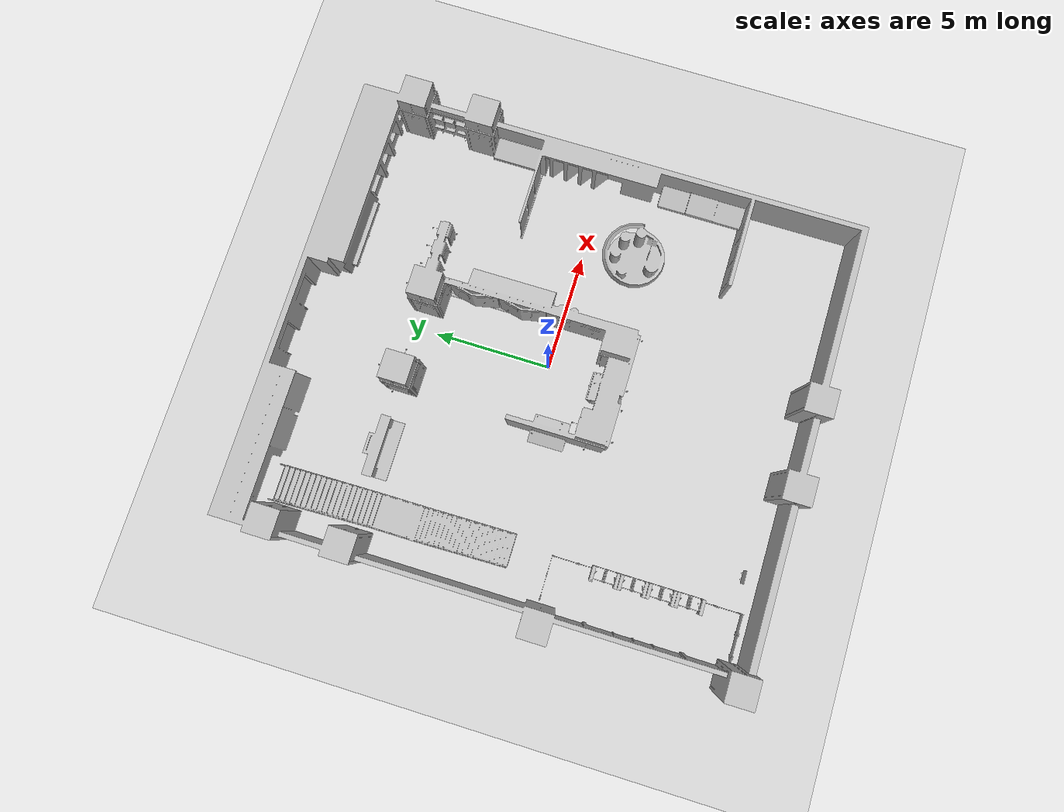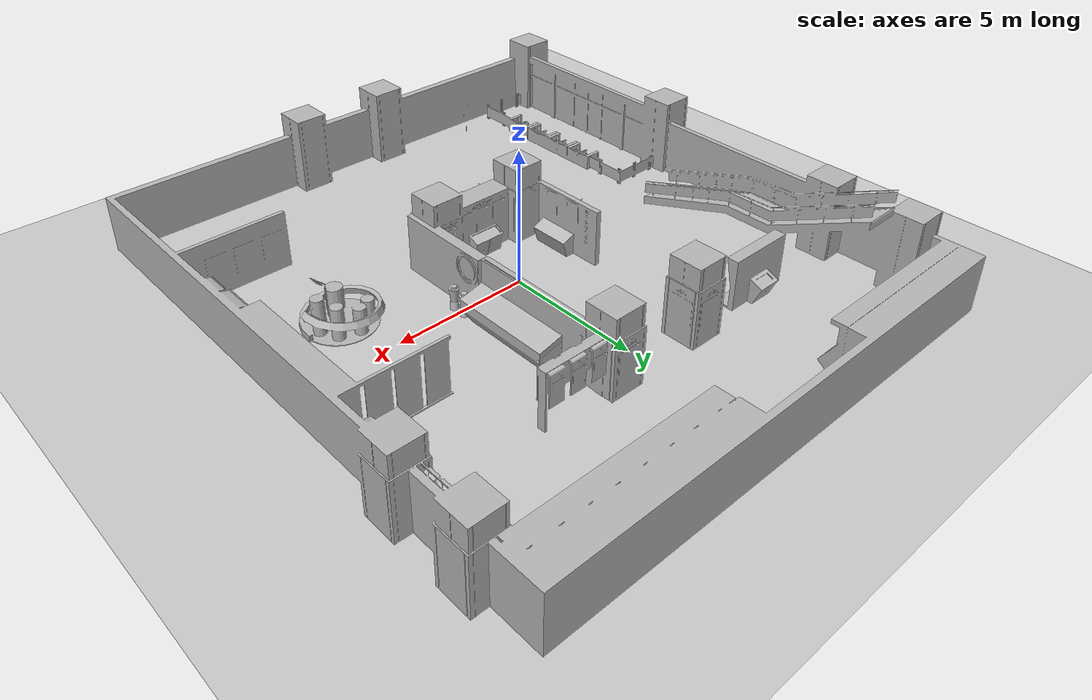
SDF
<?xml version="1.0" ?>
<sdf version="1.4">
 <world name="default">
    <scene>
      <ambient>0.68 0.68 0.68 1.0</ambient>
      <shadows> false</shadows>
      <sky>
        <sunrise/>
        <clouds>
          <speed>12</speed>
      </clouds>
      </sky>
    </scene>

    <physics type='ode'>
      <max_step_size>0.001</max_step_size>
      <real_time_factor>1</real_time_factor>
      <real_time_update_rate>1000</real_time_update_rate>
      <gravity>0 0 -9.8</gravity>
    </physics>

    <include>
      <uri>model://sun</uri>
    </include>

    <include>
      <uri>model://ISCAS_groundplane</uri>
    </include>

    <include>
      <uri>model://ISCAS_Museum</uri>
      <pose>0 0 0 0 0 -1.57</pose>
    </include>

  </world>
</sdf>

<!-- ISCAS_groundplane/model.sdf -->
<sdf version="1.4">
  <model name="ISCAS_groundplane">
    <static>true</static>
    <link name="link">
      <collision name="collision">
        <geometry>
          <plane>
            <normal>0 0 1</normal>
            <size>30 30</size>
          </plane>
        </geometry>
        <surface>
          <friction>
            <ode>
              <mu>100</mu>
              <mu2>50</mu2>
            </ode>
          </friction>
        </surface>
      </collision>
      <visual name="visual">
        <cast_shadows>false</cast_shadows>
        <geometry>
          <plane>
            <normal>0 0 1</normal>
            <size>30 30</size>
          </plane>
        </geometry>
        <material>
          <script>
            <uri>model://ISCAS_groundplane/materials/scripts</uri>
            <uri>model://ISCAS_groundplane/materials/textures</uri>
            <name>ISCAS_groundplane/Image </name>
          </script>
        </material>
      </visual>
    </link>
  </model>
</sdf>

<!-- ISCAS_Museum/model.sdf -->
<sdf version="1.4">
  <model name="ISCAS_Museum">
    <link name="link">
      <inertial>
        <mass>15</mass>
        <inertia>
          <ixx>0.0</ixx>
          <ixy>0.0</ixy>
          <ixz>0.0</ixz>
          <iyy>0.0</iyy>
          <iyz>0.0</iyz>
          <izz>0.0</izz>
        </inertia>
      </inertial>
      <collision name="collision">
        <pose>0 0 0 0 0 0</pose>
        <geometry>
          <mesh>
            <uri>model://ISCAS_Museum/meshes/ISCASmuseum.obj</uri>
          </mesh>
        </geometry>
      </collision>
      <visual name="visual">
        <pose>0 0 0 0 0 0</pose>
        <geometry>
          <mesh>
            <uri>model://ISCAS_Museum/meshes/ISCASmuseum.obj</uri>
          </mesh>
        </geometry>
      </visual>
    </link>
    <static>1</static>
  </model>
</sdf>
